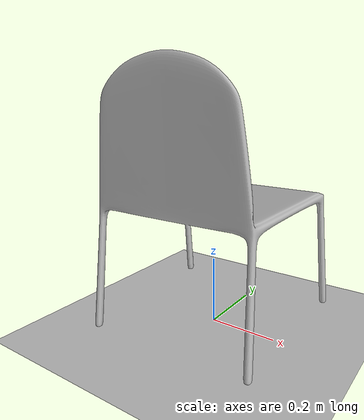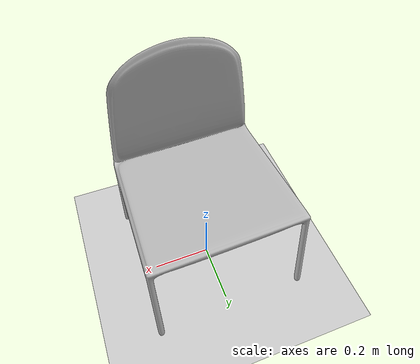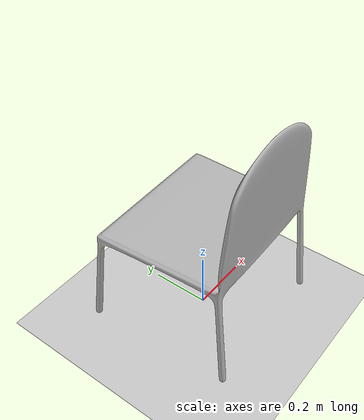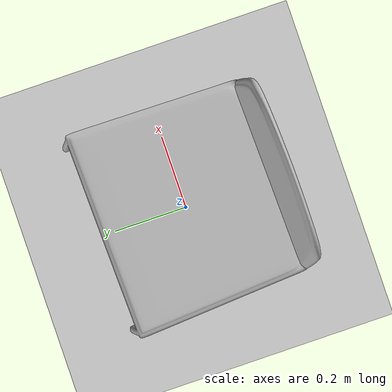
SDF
<?xml version="1.0" ?>
<sdf version="1.5">
  <world name="default">
    <physics type="ode">
      <ode>
      </ode>
    </physics>
    <include>
      <uri>model://sun</uri>
    </include>
    <include>
      <uri>model://ground_plane</uri>
    </include>
    <include>
      <pose>0 0 0.05 0 0 1.5707</pose>
      <uri>model://ikea_urban_chair</uri>
    </include>
  </world>
</sdf>

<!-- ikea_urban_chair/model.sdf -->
<sdf version="1.4">
 <model name="ikea_urban_chair">
    <link name="link">
     <inertial>
        <pose>-0.001540 0.084006 0.392711 0 0 0</pose>
        <mass>3</mass>
        <inertia>
          <ixx>0.00087914574</ixx>
          <ixy>0.0</ixy>
          <ixz>0</ixz>
          <iyy>0.00084556877</iyy>
          <iyz>0.00020777601</iyz>
          <izz>-0.00048814758</izz>
        </inertia>
      </inertial>
     <collision name="collision">
       <pose>0 0 0 0 0 1.6</pose>
       <geometry>
         <mesh>
           <uri>model://ikea_urban_chair/meshes/mesh.dae</uri>
         </mesh>
       </geometry>
     </collision>
     <visual name="visual">
       <pose>0 0 0 0 0 1.6</pose>
       <geometry>
         <mesh>
           <uri>model://ikea_urban_chair/meshes/mesh.dae</uri>
         </mesh>
       </geometry>
     </visual>
    </link>
 </model>
</sdf>
